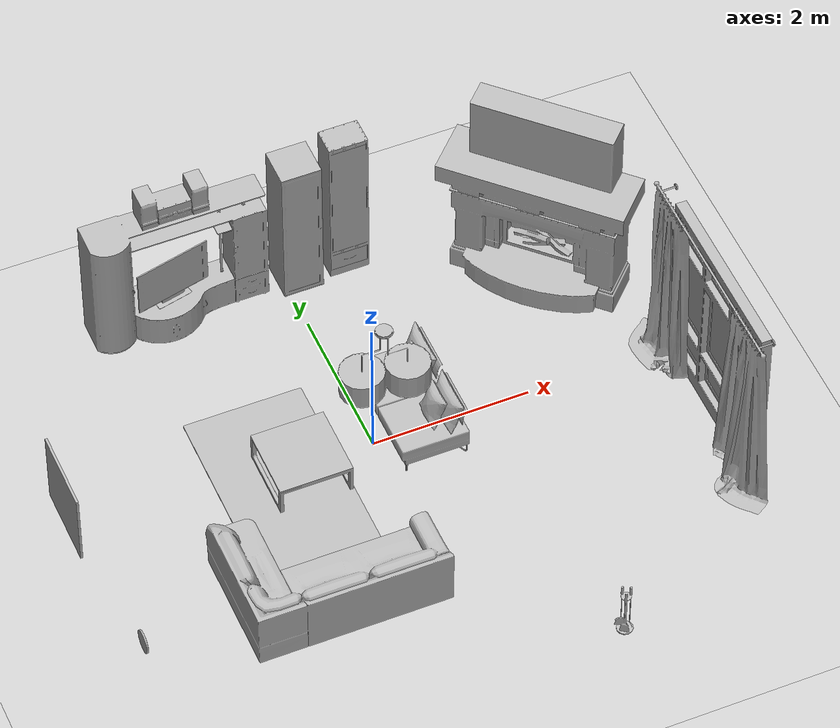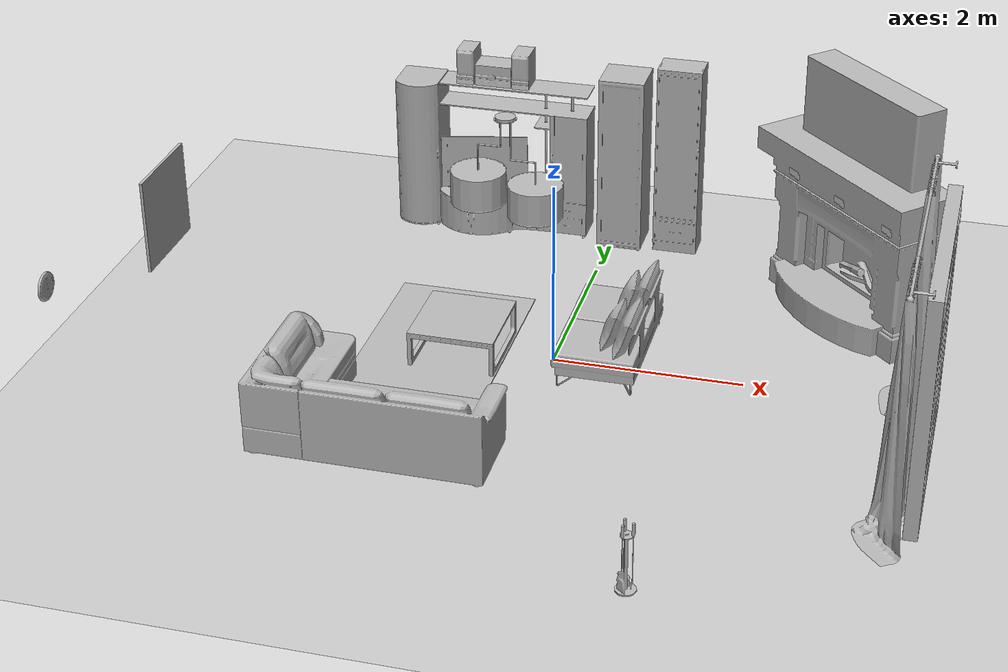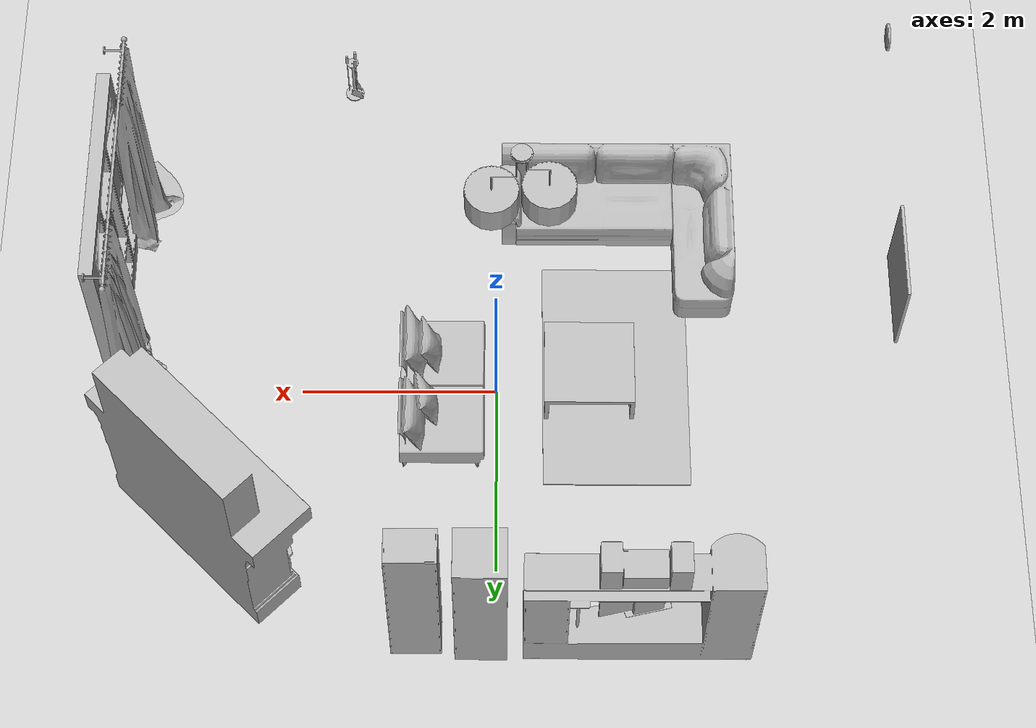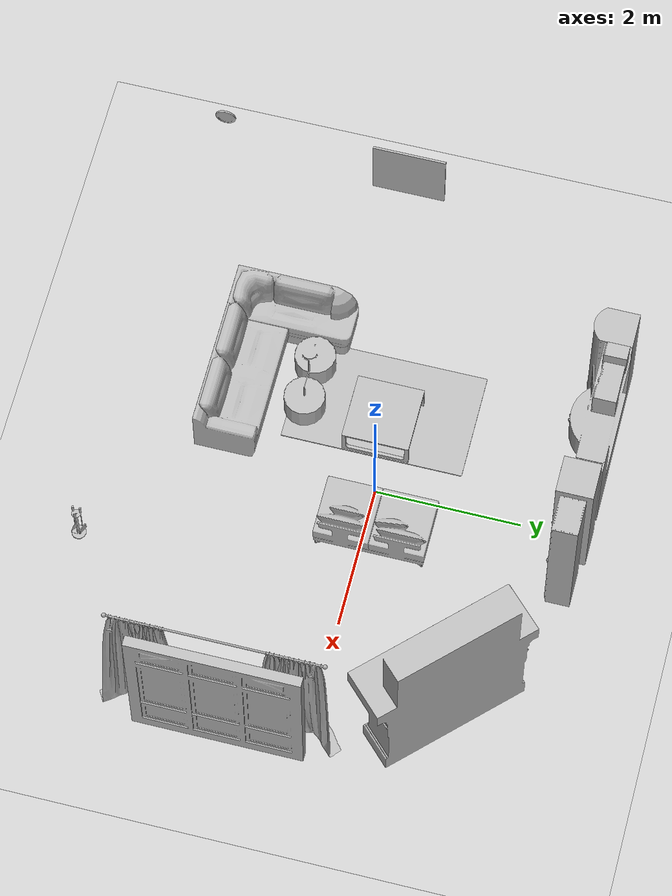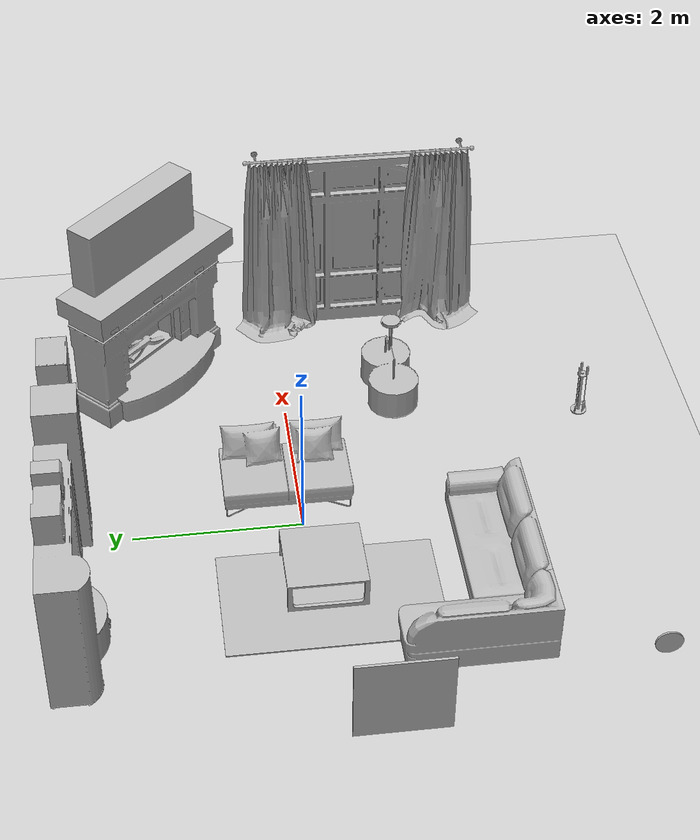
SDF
<sdf version="1.4">
 <world name="default">
  <light name="sun" type="directional">
   <pose>0 0 10 0 -0 0</pose>
   <diffuse>0.8 0.8 0.8 1</diffuse>
   <specular>0.2 0.2 0.2 1</specular>
   <attenuation>
    <range>1000</range>
    <constant>0.9</constant>
    <linear>0.01</linear>
    <quadratic>0.001</quadratic>
   </attenuation>
   <direction>-0.5 0.1 -0.9</direction>
  </light>
  <model name="ground_plane">
   <static>1</static>
   <link name="link">
    <collision name="collision">
     <geometry><plane><normal>0 0 1</normal><size>100 100</size></plane></geometry>
     <surface><friction><ode><mu>100</mu><mu2>50</mu2></ode></friction></surface>
    </collision>
    <visual name="visual">
     <cast_shadows>0</cast_shadows>
     <geometry><plane><normal>0 0 1</normal><size>100 100</size></plane></geometry>
     <material>
      <script><uri>file://media/materials/scripts/gazebo.material</uri><name>Gazebo/Grey</name></script>
     </material>
    </visual>
    <velocity_decay><linear>0</linear><angular>0</angular></velocity_decay>
   </link>
  </model>
  <physics type="ode">
   <max_step_size>0.001</max_step_size>
   <real_time_factor>1</real_time_factor>
   <real_time_update_rate>1000</real_time_update_rate>
   <gravity>0 0 -9.8</gravity>
  </physics>
  <scene><ambient>0.4 0.4 0.4 1</ambient><background>0.7 0.7 0.7 1</background><shadows>1</shadows></scene>
  <spherical_coordinates>
   <surface_model>EARTH_WGS84</surface_model>
   <latitude_deg>0</latitude_deg>
   <longitude_deg>0</longitude_deg>
   <elevation>0</elevation>
   <heading_deg>0</heading_deg>
  </spherical_coordinates>
  <model name="s__2014_0">
   <pose>3.90437 -1.1111 0 0 -0 3.14159</pose>
   <static>1</static>
   <link name="link">
    <collision name="collision"><geometry><box><size>0.160006 2.3 2</size></box></geometry></collision>
    <visual name="visual"><geometry><mesh><uri>model://s__2014/s__2014.dae</uri></mesh></geometry></visual>
    <velocity_decay><linear>0</linear><angular>0</angular></velocity_decay>
   </link>
  </model>
  <model name="s__543_0">
   <pose>-1.24933 -1.66833 0.05 0 -0 1.5708</pose>
   <static>1</static>
   <link name="link">
    <collision name="collision"><geometry><box><size>1.7 2.42 2</size></box></geometry></collision>
    <visual name="visual"><geometry><mesh><uri>model://s__543/s__543.dae</uri></mesh></geometry></visual>
    <velocity_decay><linear>0</linear><angular>0</angular></velocity_decay>
   </link>
  </model>
  <model name="s__1993_0">
   <pose>0.55067 0.147948 0.05 0 -0 3.14159</pose>
   <static>1</static>
   <link name="link">
    <collision name="collision"><geometry><box><size>0.860002 1.52 2</size></box></geometry></collision>
    <visual name="visual"><geometry><mesh><uri>model://s__1993/s__1993.dae</uri></mesh></geometry></visual>
    <velocity_decay><linear>0</linear><angular>0</angular></velocity_decay>
   </link>
  </model>
  <model name="s__1992_0">
   <pose>-0.94933 -0.128056 0.05 0 -0 0</pose>
   <static>1</static>
   <link name="link">
    <collision name="collision"><geometry><box><size>0.92 0.92 2</size></box></geometry></collision>
    <visual name="visual"><geometry><mesh><uri>model://s__1992/s__1992.dae</uri></mesh></geometry></visual>
    <velocity_decay><linear>0</linear><angular>0</angular></velocity_decay>
   </link>
  </model>
  <model name="s__516_0">
   <pose>-1.38133 2.62467 0.05 0 0 -1.5708</pose>
   <static>1</static>
   <link name="link">
    <collision name="collision"><geometry><box><size>0.680149 2.23 2</size></box></geometry></collision>
    <visual name="visual"><geometry><mesh><uri>model://s__516/s__516.dae</uri></mesh></geometry></visual>
    <velocity_decay><linear>0</linear><angular>0</angular></velocity_decay>
   </link>
  </model>
  <model name="s__566_0">
   <pose>0.141783 2.70916 0.05 0 0 -1.5708</pose>
   <static>1</static>
   <link name="link">
    <collision name="collision"><geometry><box><size>0.51 0.51 2</size></box></geometry></collision>
    <visual name="visual"><geometry><mesh><uri>model://s__566/s__566.dae</uri></mesh></geometry></visual>
    <velocity_decay><linear>0</linear><angular>0</angular></velocity_decay>
   </link>
  </model>
  <model name="386_0">
   <pose>0.775364 2.71006 0.05 0 0 -1.5708</pose>
   <static>1</static>
   <link name="link">
    <collision name="collision"><geometry><box><size>0.368936 0.499974 2</size></box></geometry></collision>
    <visual name="visual"><geometry><mesh><uri>model://386/386.dae</uri></mesh></geometry></visual>
    <velocity_decay><linear>0</linear><angular>0</angular></velocity_decay>
   </link>
  </model>
  <model name="112_0">
   <pose>-1.47592 2.60063 0.52 0 0 -1.3439</pose>
   <static>1</static>
   <link name="link">
    <collision name="collision"><geometry><box><size>0.099688 0.99 2</size></box></geometry></collision>
    <visual name="visual"><geometry><mesh><uri>model://112/112.dae</uri></mesh></geometry></visual>
    <velocity_decay><linear>0</linear><angular>0</angular></velocity_decay>
   </link>
  </model>
  <model name="s__1974_0">
   <pose>2.7638 1.53308 0.05 0 0 -2.35619</pose>
   <static>1</static>
   <link name="link">
    <collision name="collision"><geometry><box><size>0.880001 2.38 2</size></box></geometry></collision>
    <visual name="visual"><geometry><mesh><uri>model://s__1974/s__1974.dae</uri></mesh></geometry></visual>
    <velocity_decay><linear>0</linear><angular>0</angular></velocity_decay>
   </link>
  </model>
  <model name="s__1309_0">
   <pose>1.57067 -3.66288 0.05 0 0 -3.11719</pose>
   <static>1</static>
   <link name="link">
    <collision name="collision"><geometry><box><size>0.2 0.2 2</size></box></geometry></collision>
    <visual name="visual"><geometry><mesh><uri>model://s__1309/s__1309.dae</uri></mesh></geometry></visual>
    <velocity_decay><linear>0</linear><angular>0</angular></velocity_decay>
   </link>
  </model>
  <model name="238_0">
   <pose>-1.22534 -0.176052 0.05 0 -0 0</pose>
   <static>1</static>
   <link name="link">
    <collision name="collision"><geometry><box><size>1.5 2.5 0</size></box></geometry></collision>
    <visual name="visual"><geometry><mesh><uri>model://238/238.dae</uri></mesh></geometry></visual>
    <velocity_decay><linear>0</linear><angular>0</angular></velocity_decay>
   </link>
  </model>
  <model name="781_0">
   <pose>-3.98895 -0.536056 1.05 0 -0 0</pose>
   <static>1</static>
   <link name="link">
    <collision name="collision"><geometry><box><size>0.03 1 2</size></box></geometry></collision>
    <visual name="visual"><geometry><mesh><uri>model://781/781.dae</uri></mesh></geometry></visual>
    <velocity_decay><linear>0</linear><angular>0</angular></velocity_decay>
   </link>
  </model>
  <model name="s__1839_0">
   <pose>-0.229332 -0.932054 2.17 0 0 -1.5708</pose>
   <static>1</static>
   <link name="link">
    <collision name="collision"><geometry><box><size>0.54 1.1 2</size></box></geometry></collision>
    <visual name="visual"><geometry><mesh><uri>model://s__1839/s__1839.dae</uri></mesh></geometry></visual>
    <velocity_decay><linear>0</linear><angular>0</angular></velocity_decay>
   </link>
  </model>
  <model name="313_0">
   <pose>-3.99041 -3.08005 1.85 0 -0 0</pose>
   <static>1</static>
   <link name="link">
    <collision name="collision"><geometry><box><size>0.028 0.28 0</size></box></geometry></collision>
    <visual name="visual"><geometry><mesh><uri>model://313/313.dae</uri></mesh></geometry></visual>
    <velocity_decay><linear>0</linear><angular>0</angular></velocity_decay>
   </link>
  </model>
  <model name="218_0">
   <pose>-1.38133 2.79325 1.834 0 0 -1.5708</pose>
   <static>1</static>
   <link name="link">
    <collision name="collision"><geometry><box><size>0.318 0.84 2</size></box></geometry></collision>
    <visual name="visual"><geometry><mesh><uri>model://218/218.dae</uri></mesh></geometry></visual>
    <velocity_decay><linear>0</linear><angular>0</angular></velocity_decay>
   </link>
  </model>
  <model name="s__1895_0">
   <pose>3.63554 -1.14805 0.05 0 0 -3.14159</pose>
   <static>1</static>
   <link name="link">
    <collision name="collision"><geometry><box><size>0.52 3.2603 2</size></box></geometry></collision>
    <visual name="visual"><geometry><mesh><uri>model://s__1895/s__1895.dae</uri></mesh></geometry></visual>
    <velocity_decay><linear>0</linear><angular>0</angular></velocity_decay>
   </link>
  </model>
 </world>
</sdf>
